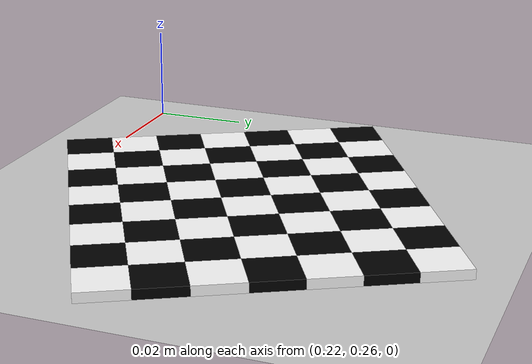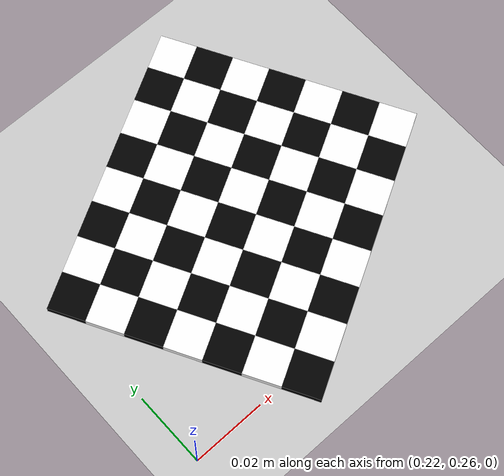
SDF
<sdf version="1.7">
 <world name="calibration_grid">
  <gravity>0 0 -9.81</gravity>
  <physics name="default_physics" default="0" type="ode">
   <max_step_size>0.001</max_step_size>
   <real_time_factor>1</real_time_factor>
   <real_time_update_rate>1000</real_time_update_rate>
  </physics>
  <scene><ambient>0.4 0.4 0.4 1</ambient><background>0.7 0.7 0.7 1</background><shadows>1</shadows></scene>
  <light name="sun" type="directional">
   <pose>0 0 10 0 -0 0</pose>
   <diffuse>0.8 0.8 0.8 1</diffuse>
   <specular>0.2 0.2 0.2 1</specular>
   <attenuation>
    <range>1000</range>
    <constant>0.9</constant>
    <linear>0.01</linear>
    <quadratic>0.001</quadratic>
   </attenuation>
   <direction>-0.5 0.1 -0.9</direction>
   <spot><inner_angle>0</inner_angle><outer_angle>0</outer_angle><falloff>0</falloff></spot>
  </light>
  <model name="ground_plane">
   <static>1</static>
   <link name="link_ground_plane">
    <collision name="collision">
     <geometry><plane><normal>0 0 1</normal><size>100 100</size></plane></geometry>
     <surface>
      <contact><collide_bitmask>65535</collide_bitmask></contact>
      <friction><ode><mu>100</mu><mu2>50</mu2></ode></friction>
     </surface>
    </collision>
    <visual name="visual">
     <cast_shadows>0</cast_shadows>
     <geometry><plane><normal>0 0 1</normal><size>100 100</size></plane></geometry>
     <material>
      <script><uri>file://media/materials/scripts/gazebo.material</uri><name>Gazebo/Grey</name></script>
     </material>
    </visual>
   </link>
  </model>
  <magnetic_field>6e-06 2.3e-05 -4.2e-05</magnetic_field>
  <atmosphere type="adiabatic"/>
  <spherical_coordinates>
   <surface_model>EARTH_WGS84</surface_model>
   <latitude_deg>0</latitude_deg>
   <longitude_deg>0</longitude_deg>
   <elevation>0</elevation>
   <heading_deg>0</heading_deg>
  </spherical_coordinates>
  <model name="small_checkerboard">
   <static>0</static>
   <link name="small_checkerboard">
    <inertial>
     <mass>0.01</mass>
     <inertia><ixx>0.083</ixx><ixy>0</ixy><ixz>0</ixz><iyy>0.083</iyy><iyz>0</iyz><izz>0.083</izz></inertia>
    </inertial>
    <collision name="collision"><geometry><box><size>0.01 0.01 0.002</size></box></geometry></collision>
    <visual name="sqr11">
     <geometry><box><size>0.01 0.01 0.002</size></box></geometry>
     <material>
      <ambient>0 0 0 1</ambient>
      <diffuse>0 0 0 1</diffuse>
      <specular>0.1 0.1 0.1 1</specular>
      <emissive>0 0 0 0</emissive>
     </material>
    </visual>
    <visual name="sqr12">
     <pose>0.01 0 0 0 -0 0</pose>
     <geometry><box><size>0.01 0.01 0.002</size></box></geometry>
     <material>
      <ambient>1 1 1 1</ambient>
      <diffuse>1 1 1 1</diffuse>
      <specular>0.1 0.1 0.1 1</specular>
      <emissive>0 0 0 0</emissive>
     </material>
    </visual>
    <visual name="sqr13">
     <pose>0.02 0 0 0 -0 0</pose>
     <geometry><box><size>0.01 0.01 0.002</size></box></geometry>
     <material>
      <ambient>0 0 0 1</ambient>
      <diffuse>0 0 0 1</diffuse>
      <specular>0.1 0.1 0.1 1</specular>
      <emissive>0 0 0 0</emissive>
     </material>
    </visual>
    <visual name="sqr14">
     <pose>0.03 0 0 0 -0 0</pose>
     <geometry><box><size>0.01 0.01 0.002</size></box></geometry>
     <material>
      <ambient>1 1 1 1</ambient>
      <diffuse>1 1 1 1</diffuse>
      <specular>0.1 0.1 0.1 1</specular>
      <emissive>0 0 0 0</emissive>
     </material>
    </visual>
    <visual name="sqr15">
     <pose>0.04 0 0 0 -0 0</pose>
     <geometry><box><size>0.01 0.01 0.002</size></box></geometry>
     <material>
      <ambient>0 0 0 1</ambient>
      <diffuse>0 0 0 1</diffuse>
      <specular>0.1 0.1 0.1 1</specular>
      <emissive>0 0 0 0</emissive>
     </material>
    </visual>
    <visual name="sqr16">
     <pose>0.05 0 0 0 -0 0</pose>
     <geometry><box><size>0.01 0.01 0.002</size></box></geometry>
     <material>
      <ambient>1 1 1 1</ambient>
      <diffuse>1 1 1 1</diffuse>
      <specular>0.1 0.1 0.1 1</specular>
      <emissive>0 0 0 0</emissive>
     </material>
    </visual>
    <visual name="sqr17">
     <pose>0.06 0 0 0 -0 0</pose>
     <geometry><box><size>0.01 0.01 0.002</size></box></geometry>
     <material>
      <ambient>0 0 0 1</ambient>
      <diffuse>0 0 0 1</diffuse>
      <specular>0.1 0.1 0.1 1</specular>
      <emissive>0 0 0 0</emissive>
     </material>
    </visual>
    <visual name="sqr18">
     <pose>0.07 0 0 0 -0 0</pose>
     <geometry><box><size>0.01 0.01 0.002</size></box></geometry>
     <material>
      <ambient>1 1 1 1</ambient>
      <diffuse>1 1 1 1</diffuse>
      <specular>0.1 0.1 0.1 1</specular>
      <emissive>0 0 0 0</emissive>
     </material>
    </visual>
    <visual name="sqr31">
     <pose>0 0.02 0 0 -0 0</pose>
     <geometry><box><size>0.01 0.01 0.002</size></box></geometry>
     <material>
      <ambient>0 0 0 1</ambient>
      <diffuse>0 0 0 1</diffuse>
      <specular>0.1 0.1 0.1 1</specular>
      <emissive>0 0 0 0</emissive>
     </material>
    </visual>
    <visual name="sqr32">
     <pose>0.01 0.02 0 0 -0 0</pose>
     <geometry><box><size>0.01 0.01 0.002</size></box></geometry>
     <material>
      <ambient>1 1 1 1</ambient>
      <diffuse>1 1 1 1</diffuse>
      <specular>0.1 0.1 0.1 1</specular>
      <emissive>0 0 0 0</emissive>
     </material>
    </visual>
    <visual name="sqr33">
     <pose>0.02 0.02 0 0 -0 0</pose>
     <geometry><box><size>0.01 0.01 0.002</size></box></geometry>
     <material>
      <ambient>0 0 0 1</ambient>
      <diffuse>0 0 0 1</diffuse>
      <specular>0.1 0.1 0.1 1</specular>
      <emissive>0 0 0 0</emissive>
     </material>
    </visual>
    <visual name="sqr34">
     <pose>0.03 0.02 0 0 -0 0</pose>
     <geometry><box><size>0.01 0.01 0.002</size></box></geometry>
     <material>
      <ambient>1 1 1 1</ambient>
      <diffuse>1 1 1 1</diffuse>
      <specular>0.1 0.1 0.1 1</specular>
      <emissive>0 0 0 0</emissive>
     </material>
    </visual>
    <visual name="sqr35">
     <pose>0.04 0.02 0 0 -0 0</pose>
     <geometry><box><size>0.01 0.01 0.002</size></box></geometry>
     <material>
      <ambient>0 0 0 1</ambient>
      <diffuse>0 0 0 1</diffuse>
      <specular>0.1 0.1 0.1 1</specular>
      <emissive>0 0 0 0</emissive>
     </material>
    </visual>
    <visual name="sqr36">
     <pose>0.05 0.02 0 0 -0 0</pose>
     <geometry><box><size>0.01 0.01 0.002</size></box></geometry>
     <material>
      <ambient>1 1 1 1</ambient>
      <diffuse>1 1 1 1</diffuse>
      <specular>0.1 0.1 0.1 1</specular>
      <emissive>0 0 0 0</emissive>
     </material>
    </visual>
    <visual name="sqr37">
     <pose>0.06 0.02 0 0 -0 0</pose>
     <geometry><box><size>0.01 0.01 0.002</size></box></geometry>
     <material>
      <ambient>0 0 0 1</ambient>
      <diffuse>0 0 0 1</diffuse>
      <specular>0.1 0.1 0.1 1</specular>
      <emissive>0 0 0 0</emissive>
     </material>
    </visual>
    <visual name="sqr38">
     <pose>0.07 0.02 0 0 -0 0</pose>
     <geometry><box><size>0.01 0.01 0.002</size></box></geometry>
     <material>
      <ambient>1 1 1 1</ambient>
      <diffuse>1 1 1 1</diffuse>
      <specular>0.1 0.1 0.1 1</specular>
      <emissive>0 0 0 0</emissive>
     </material>
    </visual>
    <visual name="sqr51">
     <pose>0 0.04 0 0 -0 0</pose>
     <geometry><box><size>0.01 0.01 0.002</size></box></geometry>
     <material>
      <ambient>0 0 0 1</ambient>
      <diffuse>0 0 0 1</diffuse>
      <specular>0.1 0.1 0.1 1</specular>
      <emissive>0 0 0 0</emissive>
     </material>
    </visual>
    <visual name="sqr52">
     <pose>0.01 0.04 0 0 -0 0</pose>
     <geometry><box><size>0.01 0.01 0.002</size></box></geometry>
     <material>
      <ambient>1 1 1 1</ambient>
      <diffuse>1 1 1 1</diffuse>
      <specular>0.1 0.1 0.1 1</specular>
      <emissive>0 0 0 0</emissive>
     </material>
    </visual>
    <visual name="sqr53">
     <pose>0.02 0.04 0 0 -0 0</pose>
     <geometry><box><size>0.01 0.01 0.002</size></box></geometry>
     <material>
      <ambient>0 0 0 1</ambient>
      <diffuse>0 0 0 1</diffuse>
      <specular>0.1 0.1 0.1 1</specular>
      <emissive>0 0 0 0</emissive>
     </material>
    </visual>
    <visual name="sqr54">
     <pose>0.03 0.04 0 0 -0 0</pose>
     <geometry><box><size>0.01 0.01 0.002</size></box></geometry>
     <material>
      <ambient>1 1 1 1</ambient>
      <diffuse>1 1 1 1</diffuse>
      <specular>0.1 0.1 0.1 1</specular>
      <emissive>0 0 0 0</emissive>
     </material>
    </visual>
    <visual name="sqr55">
     <pose>0.04 0.04 0 0 -0 0</pose>
     <geometry><box><size>0.01 0.01 0.002</size></box></geometry>
     <material>
      <ambient>0 0 0 1</ambient>
      <diffuse>0 0 0 1</diffuse>
      <specular>0.1 0.1 0.1 1</specular>
      <emissive>0 0 0 0</emissive>
     </material>
    </visual>
    <visual name="sqr56">
     <pose>0.05 0.04 0 0 -0 0</pose>
     <geometry><box><size>0.01 0.01 0.002</size></box></geometry>
     <material>
      <ambient>1 1 1 1</ambient>
      <diffuse>1 1 1 1</diffuse>
      <specular>0.1 0.1 0.1 1</specular>
      <emissive>0 0 0 0</emissive>
     </material>
    </visual>
    <visual name="sqr57">
     <pose>0.06 0.04 0 0 -0 0</pose>
     <geometry><box><size>0.01 0.01 0.002</size></box></geometry>
     <material>
      <ambient>0 0 0 1</ambient>
      <diffuse>0 0 0 1</diffuse>
      <specular>0.1 0.1 0.1 1</specular>
      <emissive>0 0 0 0</emissive>
     </material>
    </visual>
    <visual name="sqr58">
     <pose>0.07 0.04 0 0 -0 0</pose>
     <geometry><box><size>0.01 0.01 0.002</size></box></geometry>
     <material>
      <ambient>1 1 1 1</ambient>
      <diffuse>1 1 1 1</diffuse>
      <specular>0.1 0.1 0.1 1</specular>
      <emissive>0 0 0 0</emissive>
     </material>
    </visual>
    <visual name="sqr71">
     <pose>0 0.06 0 0 -0 0</pose>
     <geometry><box><size>0.01 0.01 0.002</size></box></geometry>
     <material>
      <ambient>0 0 0 1</ambient>
      <diffuse>0 0 0 1</diffuse>
      <specular>0.1 0.1 0.1 1</specular>
      <emissive>0 0 0 0</emissive>
     </material>
    </visual>
    <visual name="sqr72">
     <pose>0.01 0.06 0 0 -0 0</pose>
     <geometry><box><size>0.01 0.01 0.002</size></box></geometry>
     <material>
      <ambient>1 1 1 1</ambient>
      <diffuse>1 1 1 1</diffuse>
      <specular>0.1 0.1 0.1 1</specular>
      <emissive>0 0 0 0</emissive>
     </material>
    </visual>
    <visual name="sqr73">
     <pose>0.02 0.06 0 0 -0 0</pose>
     <geometry><box><size>0.01 0.01 0.002</size></box></geometry>
     <material>
      <ambient>0 0 0 1</ambient>
      <diffuse>0 0 0 1</diffuse>
      <specular>0.1 0.1 0.1 1</specular>
      <emissive>0 0 0 0</emissive>
     </material>
    </visual>
    <visual name="sqr74">
     <pose>0.03 0.06 0 0 -0 0</pose>
     <geometry><box><size>0.01 0.01 0.002</size></box></geometry>
     <material>
      <ambient>1 1 1 1</ambient>
      <diffuse>1 1 1 1</diffuse>
      <specular>0.1 0.1 0.1 1</specular>
      <emissive>0 0 0 0</emissive>
     </material>
    </visual>
    <visual name="sqr75">
     <pose>0.04 0.06 0 0 -0 0</pose>
     <geometry><box><size>0.01 0.01 0.002</size></box></geometry>
     <material>
      <ambient>0 0 0 1</ambient>
      <diffuse>0 0 0 1</diffuse>
      <specular>0.1 0.1 0.1 1</specular>
      <emissive>0 0 0 0</emissive>
     </material>
    </visual>
    <visual name="sqr76">
     <pose>0.05 0.06 0 0 -0 0</pose>
     <geometry><box><size>0.01 0.01 0.002</size></box></geometry>
     <material>
      <ambient>1 1 1 1</ambient>
      <diffuse>1 1 1 1</diffuse>
      <specular>0.1 0.1 0.1 1</specular>
      <emissive>0 0 0 0</emissive>
     </material>
    </visual>
    <visual name="sqr77">
     <pose>0.06 0.06 0 0 -0 0</pose>
     <geometry><box><size>0.01 0.01 0.002</size></box></geometry>
     <material>
      <ambient>0 0 0 1</ambient>
      <diffuse>0 0 0 1</diffuse>
      <specular>0.1 0.1 0.1 1</specular>
      <emissive>0 0 0 0</emissive>
     </material>
    </visual>
    <visual name="sqr78">
     <pose>0.07 0.06 0 0 -0 0</pose>
     <geometry><box><size>0.01 0.01 0.002</size></box></geometry>
     <material>
      <ambient>1 1 1 1</ambient>
      <diffuse>1 1 1 1</diffuse>
      <specular>0.1 0.1 0.1 1</specular>
      <emissive>0 0 0 0</emissive>
     </material>
    </visual>
    <visual name="sqr21">
     <pose>0 0.01 0 0 -0 0</pose>
     <geometry><box><size>0.01 0.01 0.002</size></box></geometry>
     <material>
      <ambient>1 1 1 1</ambient>
      <diffuse>1 1 1 1</diffuse>
      <specular>0.1 0.1 0.1 1</specular>
      <emissive>0 0 0 0</emissive>
     </material>
    </visual>
    <visual name="sqr22">
     <pose>0.01 0.01 0 0 -0 0</pose>
     <geometry><box><size>0.01 0.01 0.002</size></box></geometry>
     <material>
      <ambient>0 0 0 1</ambient>
      <diffuse>0 0 0 1</diffuse>
      <specular>0.1 0.1 0.1 1</specular>
      <emissive>0 0 0 0</emissive>
     </material>
    </visual>
    <visual name="sqr23">
     <pose>0.02 0.01 0 0 -0 0</pose>
     <geometry><box><size>0.01 0.01 0.002</size></box></geometry>
     <material>
      <ambient>1 1 1 1</ambient>
      <diffuse>1 1 1 1</diffuse>
      <specular>0.1 0.1 0.1 1</specular>
      <emissive>0 0 0 0</emissive>
     </material>
    </visual>
    <visual name="sqr24">
     <pose>0.03 0.01 0 0 -0 0</pose>
     <geometry><box><size>0.01 0.01 0.002</size></box></geometry>
     <material>
      <ambient>0 0 0 1</ambient>
      <diffuse>0 0 0 1</diffuse>
      <specular>0.1 0.1 0.1 1</specular>
      <emissive>0 0 0 0</emissive>
     </material>
    </visual>
    <visual name="sqr25">
     <pose>0.04 0.01 0 0 -0 0</pose>
     <geometry><box><size>0.01 0.01 0.002</size></box></geometry>
     <material>
      <ambient>1 1 1 1</ambient>
      <diffuse>1 1 1 1</diffuse>
      <specular>0.1 0.1 0.1 1</specular>
      <emissive>0 0 0 0</emissive>
     </material>
    </visual>
    <visual name="sqr26">
     <pose>0.05 0.01 0 0 -0 0</pose>
     <geometry><box><size>0.01 0.01 0.002</size></box></geometry>
     <material>
      <ambient>0 0 0 1</ambient>
      <diffuse>0 0 0 1</diffuse>
      <specular>0.1 0.1 0.1 1</specular>
      <emissive>0 0 0 0</emissive>
     </material>
    </visual>
    <visual name="sqr27">
     <pose>0.06 0.01 0 0 -0 0</pose>
     <geometry><box><size>0.01 0.01 0.002</size></box></geometry>
     <material>
      <ambient>1 1 1 1</ambient>
      <diffuse>1 1 1 1</diffuse>
      <specular>0.1 0.1 0.1 1</specular>
      <emissive>0 0 0 0</emissive>
     </material>
    </visual>
    <visual name="sqr28">
     <pose>0.07 0.01 0 0 -0 0</pose>
     <geometry><box><size>0.01 0.01 0.002</size></box></geometry>
     <material>
      <ambient>0 0 0 1</ambient>
      <diffuse>0 0 0 1</diffuse>
      <specular>0.1 0.1 0.1 1</specular>
      <emissive>0 0 0 0</emissive>
     </material>
    </visual>
    <visual name="sqr41">
     <pose>0 0.03 0 0 -0 0</pose>
     <geometry><box><size>0.01 0.01 0.002</size></box></geometry>
     <material>
      <ambient>1 1 1 1</ambient>
      <diffuse>1 1 1 1</diffuse>
      <specular>0.1 0.1 0.1 1</specular>
      <emissive>0 0 0 0</emissive>
     </material>
    </visual>
    <visual name="sqr42">
     <pose>0.01 0.03 0 0 -0 0</pose>
     <geometry><box><size>0.01 0.01 0.002</size></box></geometry>
     <material>
      <ambient>0 0 0 1</ambient>
      <diffuse>0 0 0 1</diffuse>
      <specular>0.1 0.1 0.1 1</specular>
      <emissive>0 0 0 0</emissive>
     </material>
    </visual>
    <visual name="sqr43">
     <pose>0.02 0.03 0 0 -0 0</pose>
     <geometry><box><size>0.01 0.01 0.002</size></box></geometry>
     <material>
      <ambient>1 1 1 1</ambient>
      <diffuse>1 1 1 1</diffuse>
      <specular>0.1 0.1 0.1 1</specular>
      <emissive>0 0 0 0</emissive>
     </material>
    </visual>
    <visual name="sqr44">
     <pose>0.03 0.03 0 0 -0 0</pose>
     <geometry><box><size>0.01 0.01 0.002</size></box></geometry>
     <material>
      <ambient>0 0 0 1</ambient>
      <diffuse>0 0 0 1</diffuse>
      <specular>0.1 0.1 0.1 1</specular>
      <emissive>0 0 0 0</emissive>
     </material>
    </visual>
    <visual name="sqr45">
     <pose>0.04 0.03 0 0 -0 0</pose>
     <geometry><box><size>0.01 0.01 0.002</size></box></geometry>
     <material>
      <ambient>1 1 1 1</ambient>
      <diffuse>1 1 1 1</diffuse>
      <specular>0.1 0.1 0.1 1</specular>
      <emissive>0 0 0 0</emissive>
     </material>
    </visual>
    <visual name="sqr46">
     <pose>0.05 0.03 0 0 -0 0</pose>
     <geometry><box><size>0.01 0.01 0.002</size></box></geometry>
     <material>
      <ambient>0 0 0 1</ambient>
      <diffuse>0 0 0 1</diffuse>
      <specular>0.1 0.1 0.1 1</specular>
      <emissive>0 0 0 0</emissive>
     </material>
    </visual>
    <visual name="sqr47">
     <pose>0.06 0.03 0 0 -0 0</pose>
     <geometry><box><size>0.01 0.01 0.002</size></box></geometry>
     <material>
      <ambient>1 1 1 1</ambient>
      <diffuse>1 1 1 1</diffuse>
      <specular>0.1 0.1 0.1 1</specular>
      <emissive>0 0 0 0</emissive>
     </material>
    </visual>
    <visual name="sqr48">
     <pose>0.07 0.03 0 0 -0 0</pose>
     <geometry><box><size>0.01 0.01 0.002</size></box></geometry>
     <material>
      <ambient>0 0 0 1</ambient>
      <diffuse>0 0 0 1</diffuse>
      <specular>0.1 0.1 0.1 1</specular>
      <emissive>0 0 0 0</emissive>
     </material>
    </visual>
    <visual name="sqr61">
     <pose>0 0.05 0 0 -0 0</pose>
     <geometry><box><size>0.01 0.01 0.002</size></box></geometry>
     <material>
      <ambient>1 1 1 1</ambient>
      <diffuse>1 1 1 1</diffuse>
      <specular>0.1 0.1 0.1 1</specular>
      <emissive>0 0 0 0</emissive>
     </material>
    </visual>
    <visual name="sqr62">
     <pose>0.01 0.05 0 0 -0 0</pose>
     <geometry><box><size>0.01 0.01 0.002</size></box></geometry>
     <material>
      <ambient>0 0 0 1</ambient>
      <diffuse>0 0 0 1</diffuse>
      <specular>0.1 0.1 0.1 1</specular>
      <emissive>0 0 0 0</emissive>
     </material>
    </visual>
    <visual name="sqr63">
     <pose>0.02 0.05 0 0 -0 0</pose>
     <geometry><box><size>0.01 0.01 0.002</size></box></geometry>
     <material>
      <ambient>1 1 1 1</ambient>
      <diffuse>1 1 1 1</diffuse>
      <specular>0.1 0.1 0.1 1</specular>
      <emissive>0 0 0 0</emissive>
     </material>
    </visual>
    <visual name="sqr64">
     <pose>0.03 0.05 0 0 -0 0</pose>
     <geometry><box><size>0.01 0.01 0.002</size></box></geometry>
     <material>
      <ambient>0 0 0 1</ambient>
      <diffuse>0 0 0 1</diffuse>
      <specular>0.1 0.1 0.1 1</specular>
      <emissive>0 0 0 0</emissive>
     </material>
    </visual>
    <visual name="sqr65">
     <pose>0.04 0.05 0 0 -0 0</pose>
     <geometry><box><size>0.01 0.01 0.002</size></box></geometry>
     <material>
      <ambient>1 1 1 1</ambient>
      <diffuse>1 1 1 1</diffuse>
      <specular>0.1 0.1 0.1 1</specular>
      <emissive>0 0 0 0</emissive>
     </material>
    </visual>
    <visual name="sqr66">
     <pose>0.05 0.05 0 0 -0 0</pose>
     <geometry><box><size>0.01 0.01 0.002</size></box></geometry>
     <material>
      <ambient>0 0 0 1</ambient>
      <diffuse>0 0 0 1</diffuse>
      <specular>0.1 0.1 0.1 1</specular>
      <emissive>0 0 0 0</emissive>
     </material>
    </visual>
    <visual name="sqr67">
     <pose>0.06 0.05 0 0 -0 0</pose>
     <geometry><box><size>0.01 0.01 0.002</size></box></geometry>
     <material>
      <ambient>1 1 1 1</ambient>
      <diffuse>1 1 1 1</diffuse>
      <specular>0.1 0.1 0.1 1</specular>
      <emissive>0 0 0 0</emissive>
     </material>
    </visual>
    <visual name="sqr68">
     <pose>0.07 0.05 0 0 -0 0</pose>
     <geometry><box><size>0.01 0.01 0.002</size></box></geometry>
     <material>
      <ambient>0 0 0 1</ambient>
      <diffuse>0 0 0 1</diffuse>
      <specular>0.1 0.1 0.1 1</specular>
      <emissive>0 0 0 0</emissive>
     </material>
    </visual>
   </link>
   <pose>0.253121 0.257643 0.001001 -5e-06 0.000116 0.50743</pose>
  </model>
 </world>
</sdf>
